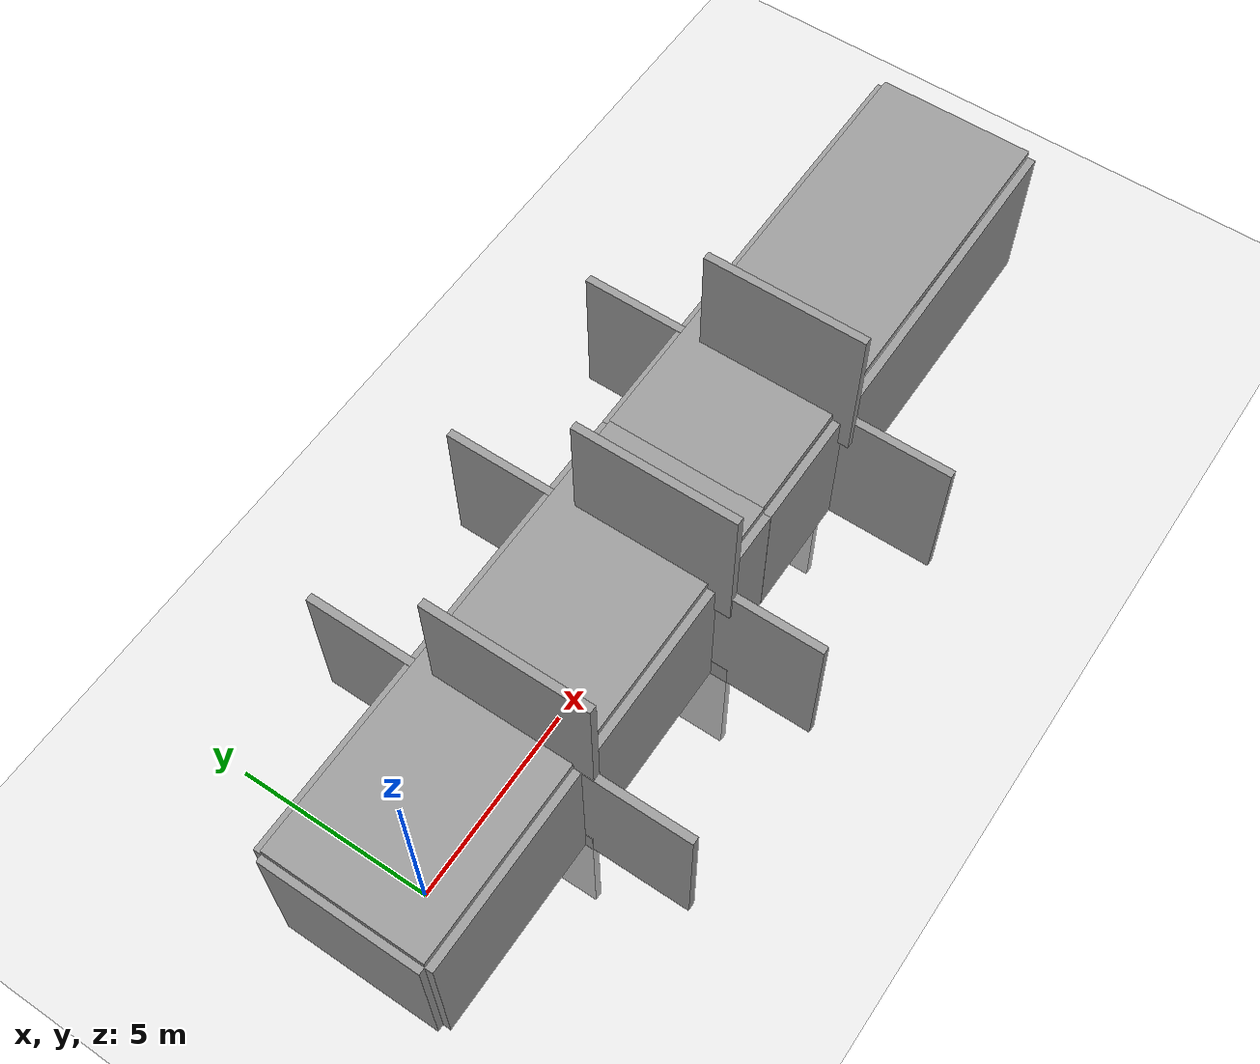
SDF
<sdf version="1.7">
 <world name="default">
  <light name="sun" type="directional">
   <pose>0 0 10 0 -0 0</pose>
   <diffuse>0.8 0.8 0.8 1</diffuse>
   <specular>0.2 0.2 0.2 1</specular>
   <attenuation>
    <range>1000</range>
    <constant>0.9</constant>
    <linear>0.01</linear>
    <quadratic>0.001</quadratic>
   </attenuation>
   <direction>-0.5 0.1 -0.9</direction>
   <spot><inner_angle>0</inner_angle><outer_angle>0</outer_angle><falloff>0</falloff></spot>
  </light>
  <plugin name="ros_interface_plugin" filename="librotors_gazebo_ros_interface_plugin.so"/>
  <model name="ground_plane">
   <static>1</static>
   <link name="link">
    <collision name="collision">
     <geometry><plane><normal>0 0 1</normal><size>100 100</size></plane></geometry>
     <surface>
      <contact><collide_bitmask>65535</collide_bitmask></contact>
      <friction><ode><mu>100</mu><mu2>50</mu2></ode></friction>
     </surface>
    </collision>
    <visual name="visual">
     <cast_shadows>0</cast_shadows>
     <geometry><plane><normal>0 0 1</normal><size>100 100</size></plane></geometry>
     <material>
      <script><uri>file://media/materials/scripts/gazebo.material</uri><name>Gazebo/Grey</name></script>
     </material>
    </visual>
   </link>
  </model>
  <gravity>0 0 -9.8</gravity>
  <magnetic_field>6e-06 2.3e-05 -4.2e-05</magnetic_field>
  <atmosphere type="adiabatic"/>
  <physics type="ode">
   <max_step_size>0.001</max_step_size>
   <real_time_factor>1</real_time_factor>
   <real_time_update_rate>1000</real_time_update_rate>
  </physics>
  <scene><ambient>0.4 0.4 0.4 1</ambient><background>0.7 0.7 0.7 1</background><shadows>1</shadows></scene>
  <spherical_coordinates>
   <surface_model>EARTH_WGS84</surface_model>
   <latitude_deg>0</latitude_deg>
   <longitude_deg>0</longitude_deg>
   <elevation>0</elevation>
   <heading_deg>0</heading_deg>
  </spherical_coordinates>
  <model name="grey_wall">
   <static>1</static>
   <link name="link">
    <pose>0 0 2 0 -0 0</pose>
    <collision name="collision"><geometry><box><size>12 0.2 4</size></box></geometry></collision>
    <visual name="visual">
     <cast_shadows>0</cast_shadows>
     <geometry><box><size>12 0.2 4</size></box></geometry>
     <material><script><name>vrc/grey_wall</name><uri>__default__</uri></script></material>
    </visual>
   </link>
   <pose>4.00391 -2.09108 0.00243 0 -0 0</pose>
  </model>
  <model name="grey_wall_clone">
   <static>1</static>
   <link name="link">
    <pose>0 0 2 0 -0 0</pose>
    <collision name="collision"><geometry><box><size>12 0.2 4</size></box></geometry></collision>
    <visual name="visual">
     <cast_shadows>0</cast_shadows>
     <geometry><box><size>12 0.2 4</size></box></geometry>
     <material><script><name>vrc/grey_wall</name><uri>__default__</uri></script></material>
    </visual>
   </link>
   <pose>4.00436 2.10473 -0.00644 0 -0 0</pose>
  </model>
  <model name="grey_wall_0">
   <static>1</static>
   <link name="link">
    <pose>0 0 2 0 -0 0</pose>
    <collision name="collision"><geometry><box><size>0.2 4 4</size></box></geometry></collision>
    <visual name="visual">
     <cast_shadows>0</cast_shadows>
     <geometry><box><size>0.2 4 4</size></box></geometry>
     <material><script><name>vrc/grey_wall</name><uri>__default__</uri></script></material>
    </visual>
   </link>
   <pose>-2.06266 0.005122 0 0 -0 0</pose>
  </model>
  <model name="grey_wall_0_clone">
   <static>1</static>
   <link name="link">
    <pose>0 0 2 0 -0 0</pose>
    <collision name="collision"><geometry><box><size>0.2 4 4</size></box></geometry></collision>
    <visual name="visual">
     <cast_shadows>0</cast_shadows>
     <geometry><box><size>0.2 4 4</size></box></geometry>
     <material><script><name>vrc/grey_wall</name><uri>__default__</uri></script></material>
    </visual>
   </link>
   <pose>19.5833 0.067045 0 0 -0 0</pose>
  </model>
  <model name="grey_wall_0_clone_0">
   <static>1</static>
   <link name="link">
    <pose>0 0 2 0 -0 0</pose>
    <collision name="collision"><geometry><box><size>0.2 4 4</size></box></geometry></collision>
    <visual name="visual">
     <cast_shadows>0</cast_shadows>
     <geometry><box><size>0.2 4 4</size></box></geometry>
     <material><script><name>vrc/grey_wall</name><uri>__default__</uri></script></material>
    </visual>
   </link>
   <pose>2.94625 2.82856 0 0 -0 0</pose>
  </model>
  <model name="grey_wall_0_clone_1">
   <static>1</static>
   <link name="link">
    <pose>0 0 2 0 -0 0</pose>
    <collision name="collision"><geometry><box><size>0.2 4 4</size></box></geometry></collision>
    <visual name="visual">
     <cast_shadows>0</cast_shadows>
     <geometry><box><size>0.2 4 4</size></box></geometry>
     <material><script><name>vrc/grey_wall</name><uri>__default__</uri></script></material>
    </visual>
   </link>
   <pose>7.87479 2.84716 0 0 -0 0</pose>
  </model>
  <model name="grey_wall_0_clone_2">
   <static>1</static>
   <link name="link">
    <pose>0 0 2 0 -0 0</pose>
    <collision name="collision"><geometry><box><size>0.2 4 4</size></box></geometry></collision>
    <visual name="visual">
     <cast_shadows>0</cast_shadows>
     <geometry><box><size>0.2 4 4</size></box></geometry>
     <material><script><name>vrc/grey_wall</name><uri>__default__</uri></script></material>
    </visual>
   </link>
   <pose>2.98969 -2.86611 0 0 -0 0</pose>
  </model>
  <model name="grey_wall_0_clone_3">
   <static>1</static>
   <link name="link">
    <pose>0 0 2 0 -0 0</pose>
    <collision name="collision"><geometry><box><size>0.2 4 4</size></box></geometry></collision>
    <visual name="visual">
     <cast_shadows>0</cast_shadows>
     <geometry><box><size>0.2 4 4</size></box></geometry>
     <material><script><name>vrc/grey_wall</name><uri>__default__</uri></script></material>
    </visual>
   </link>
   <pose>7.95689 -2.83465 -0 0 -0 0</pose>
  </model>
  <model name="grey_wall_1">
   <static>1</static>
   <link name="link">
    <pose>0 0 2 0 -0 0</pose>
    <collision name="collision"><geometry><box><size>12 4 0.2</size></box></geometry></collision>
    <visual name="visual">
     <cast_shadows>0</cast_shadows>
     <geometry><box><size>12 4 0.2</size></box></geometry>
     <material><script><name>vrc/grey_wall</name><uri>__default__</uri></script></material>
    </visual>
   </link>
   <pose>4.01388 0.00199 2.09857 0 -0 0</pose>
  </model>
  <model name="grey_wall_clone_clone">
   <static>1</static>
   <link name="link">
    <pose>0 0 2 0 -0 0</pose>
    <collision name="collision"><geometry><box><size>12 0.2 4</size></box></geometry></collision>
    <visual name="visual">
     <cast_shadows>0</cast_shadows>
     <geometry><box><size>12 0.2 4</size></box></geometry>
     <material><script><name>vrc/grey_wall</name><uri>__default__</uri></script></material>
    </visual>
   </link>
   <pose>16.0069 2.10317 -0.00644 0 -0 0</pose>
  </model>
  <model name="grey_wall_clone_0">
   <static>1</static>
   <link name="link">
    <pose>0 0 2 0 -0 0</pose>
    <collision name="collision"><geometry><box><size>12 0.2 4</size></box></geometry></collision>
    <visual name="visual">
     <cast_shadows>0</cast_shadows>
     <geometry><box><size>12 0.2 4</size></box></geometry>
     <material><script><name>vrc/grey_wall</name><uri>__default__</uri></script></material>
    </visual>
   </link>
   <pose>15.9969 -2.09749 0.00243 0 -0 0</pose>
  </model>
  <model name="grey_wall_0_clone_1_clone">
   <static>1</static>
   <link name="link">
    <pose>0 0 2 0 -0 0</pose>
    <collision name="collision"><geometry><box><size>0.2 4 4</size></box></geometry></collision>
    <visual name="visual">
     <cast_shadows>0</cast_shadows>
     <geometry><box><size>0.2 4 4</size></box></geometry>
     <material><script><name>vrc/grey_wall</name><uri>__default__</uri></script></material>
    </visual>
   </link>
   <pose>13.0714 2.72769 0 0 -0 0</pose>
  </model>
  <model name="grey_wall_0_clone_1_clone_0">
   <static>1</static>
   <link name="link">
    <pose>0 0 2 0 -0 0</pose>
    <collision name="collision"><geometry><box><size>0.2 4 4</size></box></geometry></collision>
    <visual name="visual">
     <cast_shadows>0</cast_shadows>
     <geometry><box><size>0.2 4 4</size></box></geometry>
     <material><script><name>vrc/grey_wall</name><uri>__default__</uri></script></material>
    </visual>
   </link>
   <pose>13.156 -2.91545 0 0 -0 0</pose>
  </model>
  <model name="grey_wall_0_clone_1_clone_0_clone">
   <static>1</static>
   <link name="link">
    <pose>0 0 2 0 -0 0</pose>
    <collision name="collision"><geometry><box><size>0.2 4 4</size></box></geometry></collision>
    <visual name="visual">
     <cast_shadows>0</cast_shadows>
     <geometry><box><size>0.2 4 4</size></box></geometry>
     <material><script><name>vrc/grey_wall</name><uri>__default__</uri></script></material>
    </visual>
   </link>
   <pose>12.9912 -0.468476 3.25039 0 -0 0</pose>
  </model>
  <model name="grey_wall_0_clone_1_clone_0_clone_clone">
   <static>1</static>
   <link name="link">
    <pose>0 0 2 0 -0 0</pose>
    <collision name="collision"><geometry><box><size>0.2 4 4</size></box></geometry></collision>
    <visual name="visual">
     <cast_shadows>0</cast_shadows>
     <geometry><box><size>0.2 4 4</size></box></geometry>
     <material><script><name>vrc/grey_wall</name><uri>__default__</uri></script></material>
    </visual>
   </link>
   <pose>7.90163 -0.590147 3.25039 0 -0 0</pose>
  </model>
  <model name="grey_wall_0_clone_1_clone_0_clone_clone_0">
   <static>1</static>
   <link name="link">
    <pose>0 0 2 0 -0 0</pose>
    <collision name="collision"><geometry><box><size>0.2 4 4</size></box></geometry></collision>
    <visual name="visual">
     <cast_shadows>0</cast_shadows>
     <geometry><box><size>0.2 4 4</size></box></geometry>
     <material><script><name>vrc/grey_wall</name><uri>__default__</uri></script></material>
    </visual>
   </link>
   <pose>2.99979 -0.490015 3.25039 0 -0 0</pose>
  </model>
  <model name="grey_wall_0_clone_1_clone_0_clone_clone_1">
   <static>1</static>
   <link name="link">
    <pose>0 0 2 0 -0 0</pose>
    <collision name="collision"><geometry><box><size>0.2 4 4</size></box></geometry></collision>
    <visual name="visual">
     <cast_shadows>0</cast_shadows>
     <geometry><box><size>0.2 4 4</size></box></geometry>
     <material><script><name>vrc/grey_wall</name><uri>__default__</uri></script></material>
    </visual>
   </link>
   <pose>13.0698 0.073294 -3.38849 0 -0 0</pose>
  </model>
  <model name="grey_wall_0_clone_1_clone_0_clone_clone_1_clone">
   <static>1</static>
   <link name="link">
    <pose>0 0 2 0 -0 0</pose>
    <collision name="collision"><geometry><box><size>0.2 4 4</size></box></geometry></collision>
    <visual name="visual">
     <cast_shadows>0</cast_shadows>
     <geometry><box><size>0.2 4 4</size></box></geometry>
     <material><script><name>vrc/grey_wall</name><uri>__default__</uri></script></material>
    </visual>
   </link>
   <pose>7.95608 -0.613712 -3.38849 0 -0 0</pose>
  </model>
  <model name="grey_wall_0_clone_1_clone_0_clone_clone_1_clone_0">
   <static>1</static>
   <link name="link">
    <pose>0 0 2 0 -0 0</pose>
    <collision name="collision"><geometry><box><size>0.2 4 4</size></box></geometry></collision>
    <visual name="visual">
     <cast_shadows>0</cast_shadows>
     <geometry><box><size>0.2 4 4</size></box></geometry>
     <material><script><name>vrc/grey_wall</name><uri>__default__</uri></script></material>
    </visual>
   </link>
   <pose>2.97984 -0.384429 -3.38849 0 -0 0</pose>
  </model>
  <model name="grey_wall_1_clone">
   <static>1</static>
   <link name="link">
    <pose>0 0 2 0 -0 0</pose>
    <collision name="collision"><geometry><box><size>12 4 0.2</size></box></geometry></collision>
    <visual name="visual">
     <cast_shadows>0</cast_shadows>
     <geometry><box><size>12 4 0.2</size></box></geometry>
     <material><script><name>vrc/grey_wall</name><uri>__default__</uri></script></material>
    </visual>
   </link>
   <pose>15.9987 0.01663 2.09857 0 -0 0</pose>
  </model>
 </world>
</sdf>
